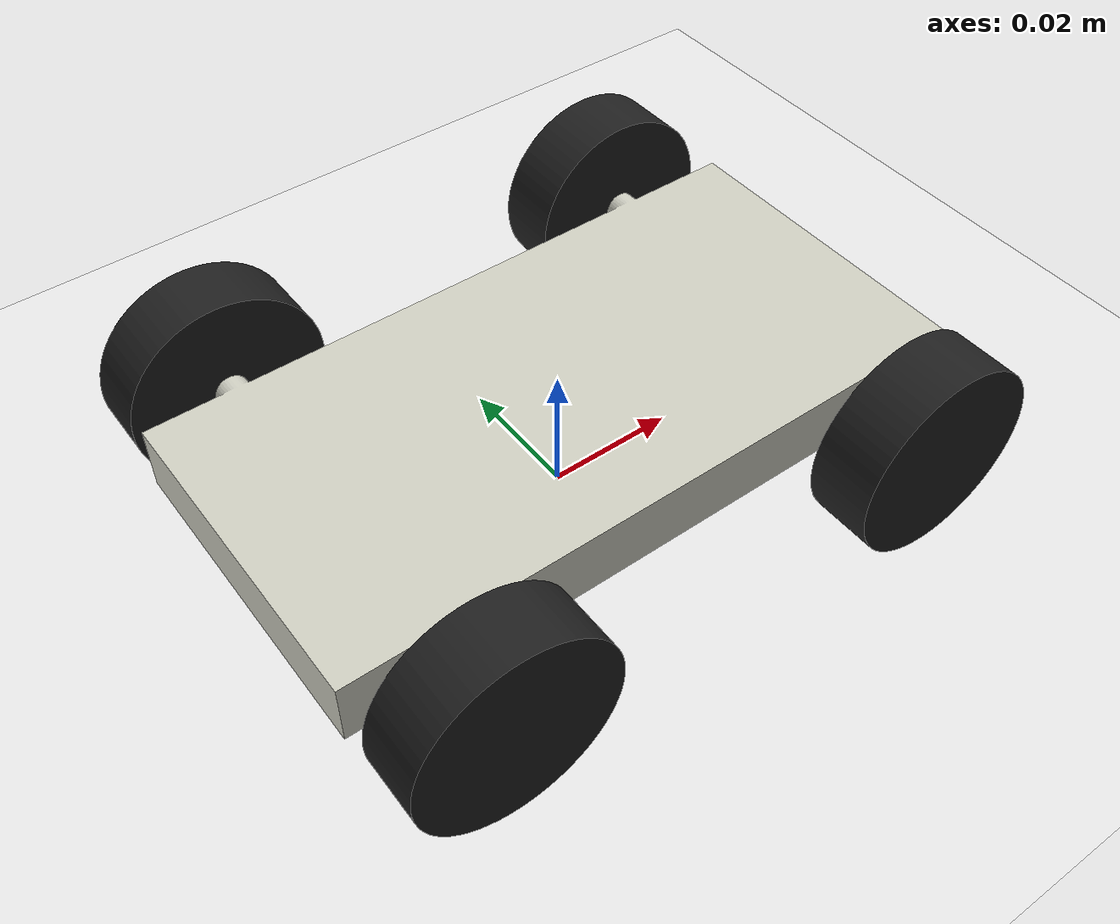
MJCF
<mujoco model="carAll_hinge">
    <compiler angle="degree" autolimits="true"/>
    <option gravity="0 0 -10" timestep="0.002"/>

    <asset>
        <!-- SolidWorks 导出的 STL 使用 mm，这里统一缩放到 MuJoCo 的 m -->
        <mesh name="car_body_mesh" file="car_body.STL" scale="0.001 0.001 0.001"/>
        <mesh name="wheel_fl_mesh" file="wheel_fl.STL" scale="0.001 0.001 0.001"/>
        <mesh name="wheel_fr_mesh" file="wheel_fr.STL" scale="0.001 0.001 0.001"/>
        <mesh name="wheel_rl_mesh" file="wheel_rl.STL" scale="0.001 0.001 0.001"/>
        <mesh name="wheel_rr_mesh" file="wheel_rr.STL" scale="0.001 0.001 0.001"/>
    </asset>

    <worldbody>
        <light diffuse=".5 .5 .5" pos="0 0 2" dir="0 0 -1"/>
        <geom type="plane" size="2 2 0.1" friction="1.5 0.02 0.002" rgba=".9 .9 .9 1"/>

        <body name="chassis" pos="0 0 0.015" euler="90 0 0">
            <freejoint/>
            <geom name="car_body_geom" type="mesh" mesh="car_body_mesh" rgba="0.8 0.8 0.75 1" mass="1.5"/>

            <!--
                轮子 STL 已经带装配坐标，所以 wheel body 放在轮心，
                wheel geom 再用相反 pos 把 mesh 对齐到 body 原点。
                四个 hinge 都绕车体局部 Z 轴，也就是轮轴方向。
            -->
            <body name="wheel_fl" pos="-0.035 0 0.035">
                <joint name="wheel_fl_hinge" type="hinge" pos="0 0 0" axis="0 0 1" damping="0.02"/>
                <geom name="wheel_fl_geom" type="mesh" mesh="wheel_fl_mesh" pos="0.035 0 -0.035" friction="1.5 0.02 0.002" rgba="0.12 0.12 0.12 1" mass="0.1"/>
                <site name="wheel_fl_center" pos="0 0 0" type="sphere" size="0.004" rgba="1 0 0 1"/>
            </body>

            <body name="wheel_fr" pos="0.035 0 0.035">
                <joint name="wheel_fr_hinge" type="hinge" pos="0 0 0" axis="0 0 1" damping="0.02"/>
                <geom name="wheel_fr_geom" type="mesh" mesh="wheel_fr_mesh" pos="-0.035 0 -0.035" friction="1.5 0.02 0.002" rgba="0.12 0.12 0.12 1" mass="0.1"/>
                <site name="wheel_fr_center" pos="0 0 0" type="sphere" size="0.004" rgba="1 0 0 1"/>
            </body>

            <body name="wheel_rl" pos="-0.035 0 -0.035">
                <joint name="wheel_rl_hinge" type="hinge" pos="0 0 0" axis="0 0 1" damping="0.02"/>
                <geom name="wheel_rl_geom" type="mesh" mesh="wheel_rl_mesh" pos="0.035 0 0.035" friction="1.5 0.02 0.002" rgba="0.12 0.12 0.12 1" mass="0.1"/>
                <site name="wheel_rl_center" pos="0 0 0" type="sphere" size="0.004" rgba="1 0 0 1"/>
            </body>

            <body name="wheel_rr" pos="0.035 0 -0.035">
                <joint name="wheel_rr_hinge" type="hinge" pos="0 0 0" axis="0 0 1" damping="0.02"/>
                <geom name="wheel_rr_geom" type="mesh" mesh="wheel_rr_mesh" pos="-0.035 0 0.035" friction="1.5 0.02 0.002" rgba="0.12 0.12 0.12 1" mass="0.1"/>
                <site name="wheel_rr_center" pos="0 0 0" type="sphere" size="0.004" rgba="1 0 0 1"/>
            </body>
        </body>
    </worldbody>
</mujoco>
